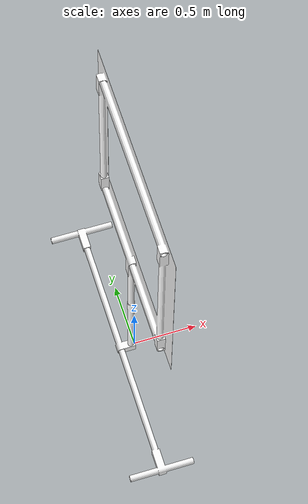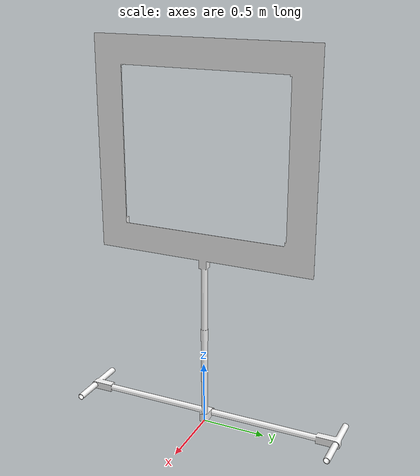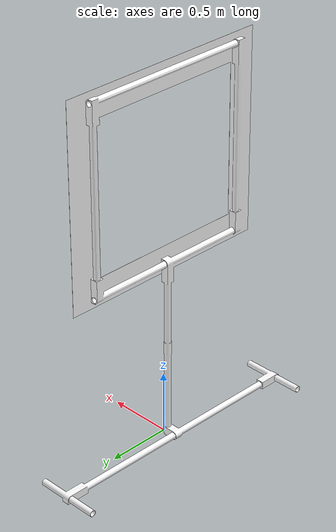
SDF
<?xml version="1.0" ?>
<sdf version="1.8">
  <model name="gate">
    <link name="gate_link">
      <visual name="gate">
        <pose>0 0 1.45 0 0 0</pose>
        <geometry>
          <mesh>
            <uri>model://gate/meshes/gate.dae</uri>
          </mesh>
        </geometry>
        <material>
          <diffuse>1.0 1.0 1.0 1.0</diffuse>
          <specular>0.0 0.0 0.0 1.0</specular>
          <pbr>
            <metal>
              <albedo_map>model://gate/meshes/gate_color.png</albedo_map>
            </metal>
          </pbr>
        </material>
      </visual>
      <collision name="collision">
        <pose>0 0 1.45 0 0 0</pose>
        <geometry>
          <mesh>
            <uri>model://gate/meshes/gate.dae</uri>
          </mesh>
        </geometry>
      </collision>
    </link>

    <static>1</static>
    <plugin filename="gz-sim-pose-publisher-system" name="gz::sim::systems::PosePublisher">
        <publish_model_pose>true</publish_model_pose>
        <publish_link_pose>false</publish_link_pose>
        <publish_nested_model_pose>true</publish_nested_model_pose>
        <use_pose_vector_msg>true</use_pose_vector_msg>
        <update_frequency>10</update_frequency>
    </plugin>
  </model>
</sdf>
